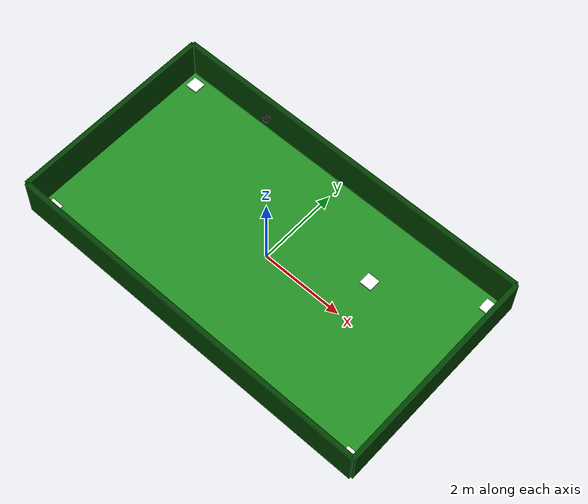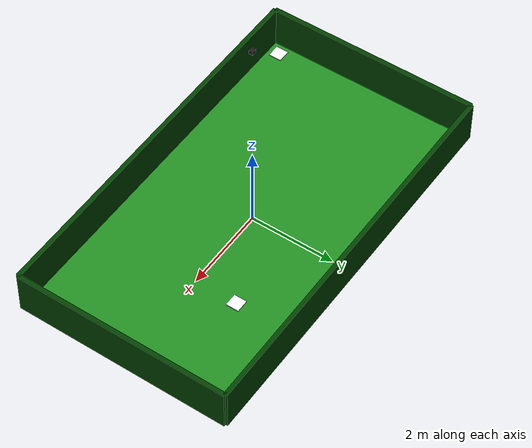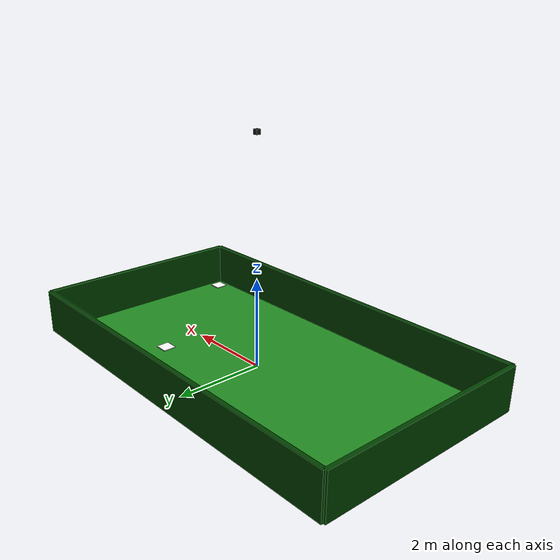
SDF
<?xml version="1.0" ?>
<sdf version="1.8">
  <world name="default">

    <!-- PHYSICS -->
    <physics name="1ms" type="ignored">
      <max_step_size>0.001</max_step_size>
      <real_time_factor>1.0</real_time_factor>
    </physics>

    <!-- PLUGINS -->
    <plugin filename="gz-sim-physics-system"
            name="gz::sim::systems::Physics">
    </plugin>

    <plugin filename="gz-sim-scene-broadcaster-system"
            name="gz::sim::systems::SceneBroadcaster">
    </plugin>

    <plugin filename="gz-sim-user-commands-system"
            name="gz::sim::systems::UserCommands">
    </plugin>

    <plugin filename="libgz-sim-sensors-system.so"
            name="gz::sim::systems::Sensors">
      <render_engine>ogre2</render_engine>
    </plugin>

    <!-- SUN -->
    <include>
      <uri>https://fuel.gazebosim.org/1.0/OpenRobotics/models/Sun</uri>
    </include>

    <!-- LANTAI HIJAU 40x20m -->
    <model name="green_floor">
      <static>true</static>
      <pose>0 0 0 0 0 0</pose>
      <link name="floor_link">

        <collision name="collision">
          <geometry>
            <box>
              <size>9.0 5.0 0.02</size>
            </box>
          </geometry>
        </collision>

        <visual name="visual">
          <geometry>
            <box>
              <size>9.0 5.0 0.02</size>
            </box>
          </geometry>
          <material>
            <!-- Hijau lapangan -->
            <ambient>0.13 0.55 0.13 1</ambient>
            <diffuse>0.13 0.55 0.13 1</diffuse>
            <specular>0.1 0.1 0.1 1</specular>
          </material>
        </visual>

      </link>
    </model>

    <!-- DINDING DEPAN (+X) -->
    <model name="wall_front">
      <static>true</static>
      <pose>4.5 0 0.5 0 0 0</pose>
      <link name="link">

        <collision name="collision">
          <geometry>
            <box>
              <size>0.1 5.0 1.0</size>
            </box>
          </geometry>
        </collision>

        <visual name="visual">
          <geometry>
            <box>
              <size>0.1 5.0 1.0</size>
            </box>
          </geometry>
          <material>
            <!-- Hijau gelap -->
            <ambient>0.0 0.25 0.0 1</ambient>
            <diffuse>0.0 0.25 0.0 1</diffuse>
            <specular>0.05 0.05 0.05 1</specular>
          </material>
        </visual>

      </link>
    </model>

    <!-- DINDING BELAKANG (-X) -->
    <model name="wall_back">
      <static>true</static>
      <pose>-4.5 0 0.5 0 0 0</pose>
      <link name="link">

        <collision name="collision">
          <geometry>
            <box>
              <size>0.1 5.0 1.0</size>
            </box>
          </geometry>
        </collision>

        <visual name="visual">
          <geometry>
            <box>
              <size>0.1 5.0 1.0</size>
            </box>
          </geometry>
          <material>
            <ambient>0.0 0.25 0.0 1</ambient>
            <diffuse>0.0 0.25 0.0 1</diffuse>
            <specular>0.05 0.05 0.05 1</specular>
          </material>
        </visual>

      </link>
    </model>

    <!-- DINDING KIRI (+Y) -->
    <model name="wall_left">
      <static>true</static>
      <pose>0 2.5 0.5 0 0 0</pose>
      <link name="link">

        <collision name="collision">
          <geometry>
            <box>
              <size>9.0 0.1 1.0</size>
            </box>
          </geometry>
        </collision>

        <visual name="visual">
          <geometry>
            <box>
              <size>9.0 0.1 1.0</size>
            </box>
          </geometry>
          <material>
            <ambient>0.0 0.25 0.0 1</ambient>
            <diffuse>0.0 0.25 0.0 1</diffuse>
            <specular>0.05 0.05 0.05 1</specular>
          </material>
        </visual>

      </link>
    </model>

    <!-- DINDING KANAN (-Y) -->
    <model name="wall_right">
      <static>true</static>
      <pose>0 -2.5 0.5 0 0 0</pose>
      <link name="link">

        <collision name="collision">
          <geometry>
            <box>
              <size>9.0 0.1 1.0</size>
            </box>
          </geometry>
        </collision>

        <visual name="visual">
          <geometry>
            <box>
              <size>9.0 0.1 1.0</size>
            </box>
          </geometry>
          <material>
            <ambient>0.0 0.25 0.0 1</ambient>
            <diffuse>0.0 0.25 0.0 1</diffuse>
            <specular>0.05 0.05 0.05 1</specular>
          </material>
        </visual>

      </link>
    </model>

    <!--    KAMERA EKSTERNAL    -->
    <model name="overhead_camera">
      <static>true</static>
      <pose>0 0 5.0 0 1.5708 0</pose>

      <link name="camera_link">

        <visual name="visual">
          <geometry>
            <box>
              <size>0.1 0.1 0.1</size>
            </box>
          </geometry>
          <material>
            <ambient>0.1 0.1 0.1 1</ambient>
            <diffuse>0.1 0.1 0.1 1</diffuse>
          </material>
        </visual>

        <collision name="collision">
          <geometry>
            <box>
              <size>0.1 0.1 0.1</size>
            </box>
          </geometry>
        </collision>

        <inertial>
          <mass>0.1</mass>
          <inertia>
            <ixx>0.000167</ixx>
            <iyy>0.000167</iyy>
            <izz>0.000167</izz>
          </inertia>
        </inertial>

        <sensor name="overhead_camera_sensor" type="camera">

          <always_on>true</always_on>
          <update_rate>30</update_rate>
          <visualize>true</visualize>
          <topic>/overhead_camera/image_raw</topic>

          <camera>
            <horizontal_fov>2.0</horizontal_fov>
            <image>
              <width>1920</width>
              <height>1080</height>
              <format>R8G8B8</format>
            </image>
            <clip>
              <near>0.1</near>
              <far>50.0</far>
            </clip>
          </camera>

        </sensor>

      </link>
    </model>

    <!-- TARGET ArUco (bisa digeser manual di Gazebo) -->
    <model name="aruco_target_v3">
      <static>true</static>
      <pose>2 1 0.02 0 0 0</pose>
      <link name="link">
        <visual name="visual">
          <geometry>
            <box><size>0.3 0.3 0.02</size></box>
          </geometry>
          <material>
            <diffuse>1 1 1 1</diffuse>
            <specular>0 0 0 1</specular>
            <pbr>
              <metal>
                <albedo_map>file:///home/selvia/robot_ws/src/swarm_robot/meshes/aruco/target_marker.png</albedo_map>
                <metalness>0.0</metalness>
                <roughness>1.0</roughness>
              </metal>
            </pbr>
          </material>
        </visual>
      </link>
    </model>

    <!-- CORNER MARKER TL (ArUco ID=3) -->
    <model name="corner_TL">
      <static>true</static>
      <pose>-4.2 2.2 0.02 0 0 0</pose>
      <link name="link">
        <visual name="visual">
          <geometry>
            <box><size>0.3 0.3 0.02</size></box>
          </geometry>
          <material>
            <diffuse>1 1 1 1</diffuse>
            <specular>0 0 0 1</specular>
            <pbr>
              <metal>
                <albedo_map>file:///home/selvia/robot_ws/src/swarm_robot/meshes/aruco/aruco3.png</albedo_map>
                <metalness>0.0</metalness>
                <roughness>1.0</roughness>
              </metal>
            </pbr>
          </material>
        </visual>
      </link>
    </model>

    <!-- CORNER MARKER TR (ArUco ID=4) -->
    <model name="corner_TR">
      <static>true</static>
      <pose>4.2 2.2 0.02 0 0 0</pose>
      <link name="link">
        <visual name="visual">
          <geometry>
            <box><size>0.3 0.3 0.02</size></box>
          </geometry>
          <material>
            <diffuse>1 1 1 1</diffuse>
            <specular>0 0 0 1</specular>
            <pbr>
              <metal>
                <albedo_map>file:///home/selvia/robot_ws/src/swarm_robot/meshes/aruco/aruco4.png</albedo_map>
                <metalness>0.0</metalness>
                <roughness>1.0</roughness>
              </metal>
            </pbr>
          </material>
        </visual>
      </link>
    </model>

    <!-- CORNER MARKER BR (ArUco ID=5) -->
    <model name="corner_BR">
      <static>true</static>
      <pose>4.2 -2.2 0.02 0 0 0</pose>
      <link name="link">
        <visual name="visual">
          <geometry>
            <box><size>0.3 0.3 0.02</size></box>
          </geometry>
          <material>
            <diffuse>1 1 1 1</diffuse>
            <specular>0 0 0 1</specular>
            <pbr>
              <metal>
                <albedo_map>file:///home/selvia/robot_ws/src/swarm_robot/meshes/aruco/aruco5.png</albedo_map>
                <metalness>0.0</metalness>
                <roughness>1.0</roughness>
              </metal>
            </pbr>
          </material>
        </visual>
      </link>
    </model>

    <!-- CORNER MARKER BL (ArUco ID=6) -->
    <model name="corner_BL">
      <static>true</static>
      <pose>-4.2 -2.2 0.02 0 0 0</pose>
      <link name="link">
        <visual name="visual">
          <geometry>
            <box><size>0.3 0.3 0.02</size></box>
          </geometry>
          <material>
            <diffuse>1 1 1 1</diffuse>
            <specular>0 0 0 1</specular>
            <pbr>
              <metal>
                <albedo_map>file:///home/selvia/robot_ws/src/swarm_robot/meshes/aruco/aruco6.png</albedo_map>
                <metalness>0.0</metalness>
                <roughness>1.0</roughness>
              </metal>
            </pbr>
          </material>
        </visual>
      </link>
    </model>

  </world>
</sdf>
